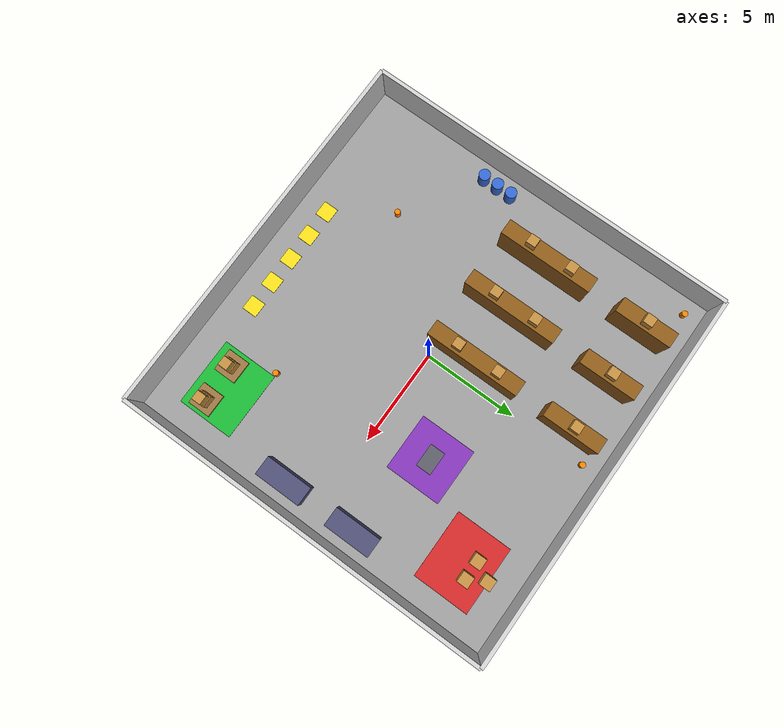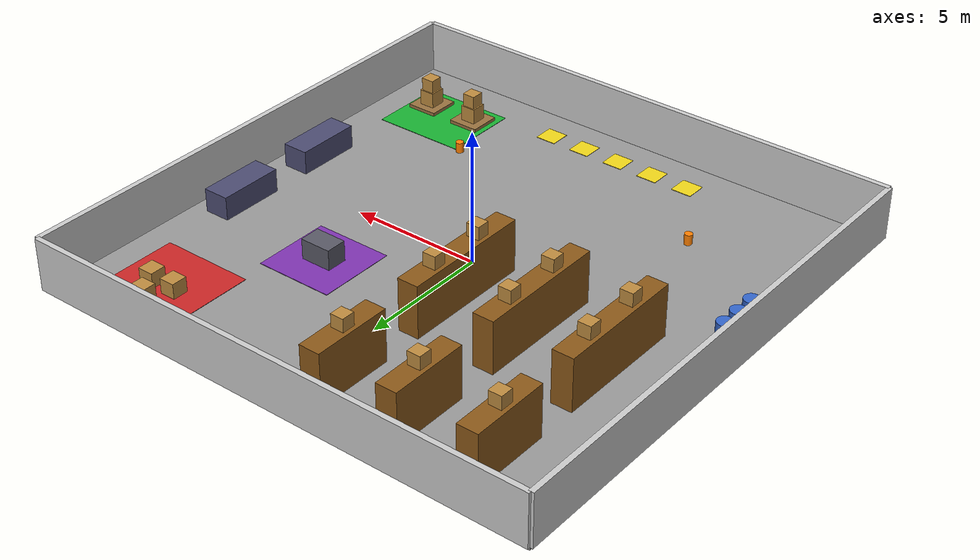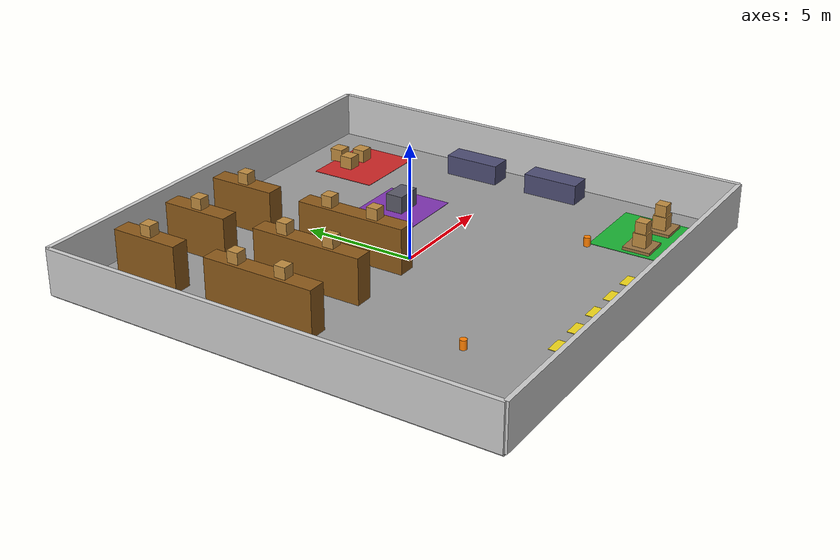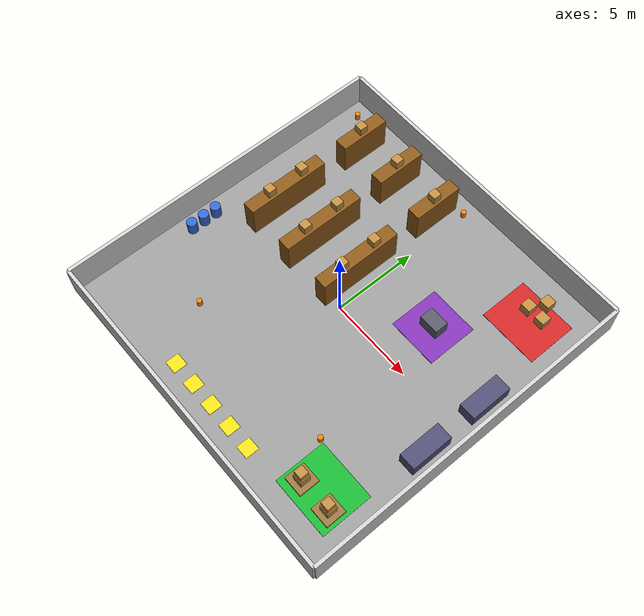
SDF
<?xml version="1.0"?>
<sdf version="1.8">
  <world name="default">
    <physics name="1ms" type="ignored"><max_step_size>0.001</max_step_size><real_time_factor>1.0</real_time_factor></physics>
    <plugin filename="gz-sim-physics-system" name="gz::sim::systems::Physics"/>
    <plugin filename="gz-sim-user-commands-system" name="gz::sim::systems::UserCommands"/>
    <plugin filename="gz-sim-scene-broadcaster-system" name="gz::sim::systems::SceneBroadcaster"/>
    <light type="directional" name="sun">
      <cast_shadows>true</cast_shadows><pose>0 0 10 0 0 0</pose>
      <diffuse>0.9 0.9 0.9 1</diffuse><specular>0.2 0.2 0.2 1</specular>
      <direction>-0.5 0.1 -0.9</direction>
    </light>
    <model name="floor"><static>true</static><pose>0 0 -0.05 0 0 0</pose><link name="l"><collision name="c"><geometry><box><size>20 20 0.1</size></box></geometry></collision><visual name="v"><geometry><box><size>20 20 0.1</size></box></geometry><material><ambient>0.6 0.6 0.6 1</ambient><diffuse>0.6 0.6 0.6 1</diffuse></material></visual></link></model>
    <model name="wall_n"><static>true</static><pose>0 10 1 0 0 0</pose><link name="l"><collision name="c"><geometry><box><size>20 0.2 2</size></box></geometry></collision><visual name="v"><geometry><box><size>20 0.2 2</size></box></geometry><material><ambient>0.8 0.8 0.8 1</ambient><diffuse>0.8 0.8 0.8 1</diffuse></material></visual></link></model>
    <model name="wall_s"><static>true</static><pose>0 -10 1 0 0 0</pose><link name="l"><collision name="c"><geometry><box><size>20 0.2 2</size></box></geometry></collision><visual name="v"><geometry><box><size>20 0.2 2</size></box></geometry><material><ambient>0.8 0.8 0.8 1</ambient><diffuse>0.8 0.8 0.8 1</diffuse></material></visual></link></model>
    <model name="wall_e"><static>true</static><pose>10 0 1 0 0 0</pose><link name="l"><collision name="c"><geometry><box><size>0.2 20 2</size></box></geometry></collision><visual name="v"><geometry><box><size>0.2 20 2</size></box></geometry><material><ambient>0.8 0.8 0.8 1</ambient><diffuse>0.8 0.8 0.8 1</diffuse></material></visual></link></model>
    <model name="wall_w"><static>true</static><pose>-10 0 1 0 0 0</pose><link name="l"><collision name="c"><geometry><box><size>0.2 20 2</size></box></geometry></collision><visual name="v"><geometry><box><size>0.2 20 2</size></box></geometry><material><ambient>0.8 0.8 0.8 1</ambient><diffuse>0.8 0.8 0.8 1</diffuse></material></visual></link></model>
    <model name="shelf_1"><static>true</static><pose>-7 2 1 0 0 0</pose><link name="l"><collision name="c"><geometry><box><size>0.8 5 2</size></box></geometry></collision><visual name="v"><geometry><box><size>0.8 5 2</size></box></geometry><material><ambient>0.55 0.35 0.1 1</ambient><diffuse>0.55 0.35 0.1 1</diffuse></material></visual></link></model>
    <model name="shelf_4"><static>true</static><pose>-7 7.5 1 0 0 0</pose><link name="l"><collision name="c"><geometry><box><size>0.8 3 2</size></box></geometry></collision><visual name="v"><geometry><box><size>0.8 3 2</size></box></geometry><material><ambient>0.55 0.35 0.1 1</ambient><diffuse>0.55 0.35 0.1 1</diffuse></material></visual></link></model>
    <model name="stock_a1"><static>true</static><pose>-7 1 2.25 0 0 0</pose><link name="l"><collision name="c"><geometry><box><size>0.5 0.5 0.5</size></box></geometry></collision><visual name="v"><geometry><box><size>0.5 0.5 0.5</size></box></geometry><material><ambient>0.75 0.55 0.25 1</ambient><diffuse>0.75 0.55 0.25 1</diffuse></material></visual></link></model>
    <model name="stock_b1"><static>true</static><pose>-7 3.2 2.25 0 0 0</pose><link name="l"><collision name="c"><geometry><box><size>0.5 0.5 0.5</size></box></geometry></collision><visual name="v"><geometry><box><size>0.5 0.5 0.5</size></box></geometry><material><ambient>0.75 0.55 0.25 1</ambient><diffuse>0.75 0.55 0.25 1</diffuse></material></visual></link></model>
    <model name="stock_c1"><static>true</static><pose>-7 7.5 2.25 0 0 0</pose><link name="l"><collision name="c"><geometry><box><size>0.5 0.5 0.5</size></box></geometry></collision><visual name="v"><geometry><box><size>0.5 0.5 0.5</size></box></geometry><material><ambient>0.75 0.55 0.25 1</ambient><diffuse>0.75 0.55 0.25 1</diffuse></material></visual></link></model>
    <model name="shelf_2"><static>true</static><pose>-4 2 1 0 0 0</pose><link name="l"><collision name="c"><geometry><box><size>0.8 5 2</size></box></geometry></collision><visual name="v"><geometry><box><size>0.8 5 2</size></box></geometry><material><ambient>0.55 0.35 0.1 1</ambient><diffuse>0.55 0.35 0.1 1</diffuse></material></visual></link></model>
    <model name="shelf_5"><static>true</static><pose>-4 7.5 1 0 0 0</pose><link name="l"><collision name="c"><geometry><box><size>0.8 3 2</size></box></geometry></collision><visual name="v"><geometry><box><size>0.8 3 2</size></box></geometry><material><ambient>0.55 0.35 0.1 1</ambient><diffuse>0.55 0.35 0.1 1</diffuse></material></visual></link></model>
    <model name="stock_a2"><static>true</static><pose>-4 1 2.25 0 0 0</pose><link name="l"><collision name="c"><geometry><box><size>0.5 0.5 0.5</size></box></geometry></collision><visual name="v"><geometry><box><size>0.5 0.5 0.5</size></box></geometry><material><ambient>0.75 0.55 0.25 1</ambient><diffuse>0.75 0.55 0.25 1</diffuse></material></visual></link></model>
    <model name="stock_b2"><static>true</static><pose>-4 3.2 2.25 0 0 0</pose><link name="l"><collision name="c"><geometry><box><size>0.5 0.5 0.5</size></box></geometry></collision><visual name="v"><geometry><box><size>0.5 0.5 0.5</size></box></geometry><material><ambient>0.75 0.55 0.25 1</ambient><diffuse>0.75 0.55 0.25 1</diffuse></material></visual></link></model>
    <model name="stock_c2"><static>true</static><pose>-4 7.5 2.25 0 0 0</pose><link name="l"><collision name="c"><geometry><box><size>0.5 0.5 0.5</size></box></geometry></collision><visual name="v"><geometry><box><size>0.5 0.5 0.5</size></box></geometry><material><ambient>0.75 0.55 0.25 1</ambient><diffuse>0.75 0.55 0.25 1</diffuse></material></visual></link></model>
    <model name="shelf_3"><static>true</static><pose>-1 2 1 0 0 0</pose><link name="l"><collision name="c"><geometry><box><size>0.8 5 2</size></box></geometry></collision><visual name="v"><geometry><box><size>0.8 5 2</size></box></geometry><material><ambient>0.55 0.35 0.1 1</ambient><diffuse>0.55 0.35 0.1 1</diffuse></material></visual></link></model>
    <model name="shelf_6"><static>true</static><pose>-1 7.5 1 0 0 0</pose><link name="l"><collision name="c"><geometry><box><size>0.8 3 2</size></box></geometry></collision><visual name="v"><geometry><box><size>0.8 3 2</size></box></geometry><material><ambient>0.55 0.35 0.1 1</ambient><diffuse>0.55 0.35 0.1 1</diffuse></material></visual></link></model>
    <model name="stock_a3"><static>true</static><pose>-1 1 2.25 0 0 0</pose><link name="l"><collision name="c"><geometry><box><size>0.5 0.5 0.5</size></box></geometry></collision><visual name="v"><geometry><box><size>0.5 0.5 0.5</size></box></geometry><material><ambient>0.75 0.55 0.25 1</ambient><diffuse>0.75 0.55 0.25 1</diffuse></material></visual></link></model>
    <model name="stock_b3"><static>true</static><pose>-1 3.2 2.25 0 0 0</pose><link name="l"><collision name="c"><geometry><box><size>0.5 0.5 0.5</size></box></geometry></collision><visual name="v"><geometry><box><size>0.5 0.5 0.5</size></box></geometry><material><ambient>0.75 0.55 0.25 1</ambient><diffuse>0.75 0.55 0.25 1</diffuse></material></visual></link></model>
    <model name="stock_c3"><static>true</static><pose>-1 7.5 2.25 0 0 0</pose><link name="l"><collision name="c"><geometry><box><size>0.5 0.5 0.5</size></box></geometry></collision><visual name="v"><geometry><box><size>0.5 0.5 0.5</size></box></geometry><material><ambient>0.75 0.55 0.25 1</ambient><diffuse>0.75 0.55 0.25 1</diffuse></material></visual></link></model>
    <model name="loading_pad"><static>true</static><pose>7 -7 0.01 0 0 0</pose><link name="l"><visual name="v"><geometry><box><size>3.6 3 0.02</size></box></geometry><material><ambient>0.1 0.7 0.2 1</ambient><diffuse>0.1 0.7 0.2 1</diffuse></material></visual></link></model>
    <model name="pallet_1"><static>true</static><pose>6.0 -7.5 0.075 0 0 0</pose><link name="l"><collision name="c"><geometry><box><size>1.2 1.2 0.15</size></box></geometry></collision><visual name="v"><geometry><box><size>1.2 1.2 0.15</size></box></geometry><material><ambient>0.6 0.45 0.25 1</ambient><diffuse>0.6 0.45 0.25 1</diffuse></material></visual></link></model>
    <model name="load_1"><static>true</static><pose>6.0 -7.5 0.45 0 0 0</pose><link name="l"><collision name="c"><geometry><box><size>0.6 0.6 0.6</size></box></geometry></collision><visual name="v"><geometry><box><size>0.6 0.6 0.6</size></box></geometry><material><ambient>0.75 0.55 0.25 1</ambient><diffuse>0.75 0.55 0.25 1</diffuse></material></visual></link></model>
    <model name="load_top_1"><static>true</static><pose>6.0 -7.5 1.0 0 0 0</pose><link name="l"><collision name="c"><geometry><box><size>0.5 0.5 0.5</size></box></geometry></collision><visual name="v"><geometry><box><size>0.5 0.5 0.5</size></box></geometry><material><ambient>0.75 0.55 0.25 1</ambient><diffuse>0.75 0.55 0.25 1</diffuse></material></visual></link></model>
    <model name="pallet_2"><static>true</static><pose>8.0 -7.5 0.075 0 0 0</pose><link name="l"><collision name="c"><geometry><box><size>1.2 1.2 0.15</size></box></geometry></collision><visual name="v"><geometry><box><size>1.2 1.2 0.15</size></box></geometry><material><ambient>0.6 0.45 0.25 1</ambient><diffuse>0.6 0.45 0.25 1</diffuse></material></visual></link></model>
    <model name="load_2"><static>true</static><pose>8.0 -7.5 0.45 0 0 0</pose><link name="l"><collision name="c"><geometry><box><size>0.6 0.6 0.6</size></box></geometry></collision><visual name="v"><geometry><box><size>0.6 0.6 0.6</size></box></geometry><material><ambient>0.75 0.55 0.25 1</ambient><diffuse>0.75 0.55 0.25 1</diffuse></material></visual></link></model>
    <model name="load_top_2"><static>true</static><pose>8.0 -7.5 1.0 0 0 0</pose><link name="l"><collision name="c"><geometry><box><size>0.5 0.5 0.5</size></box></geometry></collision><visual name="v"><geometry><box><size>0.5 0.5 0.5</size></box></geometry><material><ambient>0.75 0.55 0.25 1</ambient><diffuse>0.75 0.55 0.25 1</diffuse></material></visual></link></model>
    <model name="shipping_pad"><static>true</static><pose>7 7 0.01 0 0 0</pose><link name="l"><visual name="v"><geometry><box><size>3.6 3 0.02</size></box></geometry><material><ambient>0.8 0.15 0.15 1</ambient><diffuse>0.8 0.15 0.15 1</diffuse></material></visual></link></model>
    <model name="outbound_1"><static>true</static><pose>6.5 7.5 0.3 0 0 0</pose><link name="l"><collision name="c"><geometry><box><size>0.6 0.6 0.6</size></box></geometry></collision><visual name="v"><geometry><box><size>0.6 0.6 0.6</size></box></geometry><material><ambient>0.75 0.55 0.25 1</ambient><diffuse>0.75 0.55 0.25 1</diffuse></material></visual></link></model>
    <model name="outbound_2"><static>true</static><pose>7.5 7.5 0.3 0 0 0</pose><link name="l"><collision name="c"><geometry><box><size>0.6 0.6 0.6</size></box></geometry></collision><visual name="v"><geometry><box><size>0.6 0.6 0.6</size></box></geometry><material><ambient>0.75 0.55 0.25 1</ambient><diffuse>0.75 0.55 0.25 1</diffuse></material></visual></link></model>
    <model name="outbound_3"><static>true</static><pose>7.0 8.4 0.3 0 0 0</pose><link name="l"><collision name="c"><geometry><box><size>0.6 0.6 0.6</size></box></geometry></collision><visual name="v"><geometry><box><size>0.6 0.6 0.6</size></box></geometry><material><ambient>0.75 0.55 0.25 1</ambient><diffuse>0.75 0.55 0.25 1</diffuse></material></visual></link></model>
    <model name="packing_1"><static>true</static><pose>8.8 -2 0.45 0 0 0</pose><link name="l"><collision name="c"><geometry><box><size>1.0 2.5 0.9</size></box></geometry></collision><visual name="v"><geometry><box><size>1.0 2.5 0.9</size></box></geometry><material><ambient>0.3 0.3 0.45 1</ambient><diffuse>0.3 0.3 0.45 1</diffuse></material></visual></link></model>
    <model name="packing_2"><static>true</static><pose>8.8 2 0.45 0 0 0</pose><link name="l"><collision name="c"><geometry><box><size>1.0 2.5 0.9</size></box></geometry></collision><visual name="v"><geometry><box><size>1.0 2.5 0.9</size></box></geometry><material><ambient>0.3 0.3 0.45 1</ambient><diffuse>0.3 0.3 0.45 1</diffuse></material></visual></link></model>
    <model name="sorting_pad"><static>true</static><pose>4 3 0.01 0 0 0</pose><link name="l"><visual name="v"><geometry><box><size>3 3 0.02</size></box></geometry><material><ambient>0.5 0.2 0.7 1</ambient><diffuse>0.5 0.2 0.7 1</diffuse></material></visual></link></model>
    <model name="sort_table"><static>true</static><pose>4 3 0.4 0 0 0</pose><link name="l"><collision name="c"><geometry><box><size>1.2 0.8 0.8</size></box></geometry></collision><visual name="v"><geometry><box><size>1.2 0.8 0.8</size></box></geometry><material><ambient>0.35 0.35 0.4 1</ambient><diffuse>0.35 0.35 0.4 1</diffuse></material></visual></link></model>
    <model name="charger_1"><static>true</static><pose>-3 -8.5 0.01 0 0 0</pose><link name="l"><visual name="v"><geometry><box><size>0.8 0.8 0.02</size></box></geometry><material><ambient>0.95 0.85 0.1 1</ambient><diffuse>0.95 0.85 0.1 1</diffuse></material></visual></link></model>
    <model name="charger_2"><static>true</static><pose>-1.5 -8.5 0.01 0 0 0</pose><link name="l"><visual name="v"><geometry><box><size>0.8 0.8 0.02</size></box></geometry><material><ambient>0.95 0.85 0.1 1</ambient><diffuse>0.95 0.85 0.1 1</diffuse></material></visual></link></model>
    <model name="charger_3"><static>true</static><pose>0 -8.5 0.01 0 0 0</pose><link name="l"><visual name="v"><geometry><box><size>0.8 0.8 0.02</size></box></geometry><material><ambient>0.95 0.85 0.1 1</ambient><diffuse>0.95 0.85 0.1 1</diffuse></material></visual></link></model>
    <model name="charger_4"><static>true</static><pose>1.5 -8.5 0.01 0 0 0</pose><link name="l"><visual name="v"><geometry><box><size>0.8 0.8 0.02</size></box></geometry><material><ambient>0.95 0.85 0.1 1</ambient><diffuse>0.95 0.85 0.1 1</diffuse></material></visual></link></model>
    <model name="charger_5"><static>true</static><pose>3 -8.5 0.01 0 0 0</pose><link name="l"><visual name="v"><geometry><box><size>0.8 0.8 0.02</size></box></geometry><material><ambient>0.95 0.85 0.1 1</ambient><diffuse>0.95 0.85 0.1 1</diffuse></material></visual></link></model>
    <model name="barrel_1"><static>true</static><pose>-9 -3.0 0.4 0 0 0</pose><link name="l"><collision name="c"><geometry><cylinder><radius>0.3</radius><length>0.8</length></cylinder></geometry></collision><visual name="v"><geometry><cylinder><radius>0.3</radius><length>0.8</length></cylinder></geometry><material><ambient>0.2 0.4 0.8 1</ambient><diffuse>0.2 0.4 0.8 1</diffuse></material></visual></link></model>
    <model name="barrel_2"><static>true</static><pose>-9 -2.2 0.4 0 0 0</pose><link name="l"><collision name="c"><geometry><cylinder><radius>0.3</radius><length>0.8</length></cylinder></geometry></collision><visual name="v"><geometry><cylinder><radius>0.3</radius><length>0.8</length></cylinder></geometry><material><ambient>0.2 0.4 0.8 1</ambient><diffuse>0.2 0.4 0.8 1</diffuse></material></visual></link></model>
    <model name="barrel_3"><static>true</static><pose>-9 -1.4 0.4 0 0 0</pose><link name="l"><collision name="c"><geometry><cylinder><radius>0.3</radius><length>0.8</length></cylinder></geometry></collision><visual name="v"><geometry><cylinder><radius>0.3</radius><length>0.8</length></cylinder></geometry><material><ambient>0.2 0.4 0.8 1</ambient><diffuse>0.2 0.4 0.8 1</diffuse></material></visual></link></model>
    <model name="cone_1"><static>true</static><pose>-5 -5.5 0.2 0 0 0</pose><link name="l"><collision name="c"><geometry><cylinder><radius>0.15</radius><length>0.4</length></cylinder></geometry></collision><visual name="v"><geometry><cylinder><radius>0.15</radius><length>0.4</length></cylinder></geometry><material><ambient>1 0.5 0 1</ambient><diffuse>1 0.5 0 1</diffuse></material></visual></link></model>
    <model name="cone_2"><static>true</static><pose>5 -5.5 0.2 0 0 0</pose><link name="l"><collision name="c"><geometry><cylinder><radius>0.15</radius><length>0.4</length></cylinder></geometry></collision><visual name="v"><geometry><cylinder><radius>0.15</radius><length>0.4</length></cylinder></geometry><material><ambient>1 0.5 0 1</ambient><diffuse>1 0.5 0 1</diffuse></material></visual></link></model>
    <model name="cone_3"><static>true</static><pose>-9 9 0.2 0 0 0</pose><link name="l"><collision name="c"><geometry><cylinder><radius>0.15</radius><length>0.4</length></cylinder></geometry></collision><visual name="v"><geometry><cylinder><radius>0.15</radius><length>0.4</length></cylinder></geometry><material><ambient>1 0.5 0 1</ambient><diffuse>1 0.5 0 1</diffuse></material></visual></link></model>
    <model name="cone_4"><static>true</static><pose>0 9 0.2 0 0 0</pose><link name="l"><collision name="c"><geometry><cylinder><radius>0.15</radius><length>0.4</length></cylinder></geometry></collision><visual name="v"><geometry><cylinder><radius>0.15</radius><length>0.4</length></cylinder></geometry><material><ambient>1 0.5 0 1</ambient><diffuse>1 0.5 0 1</diffuse></material></visual></link></model>
  </world>
</sdf>
